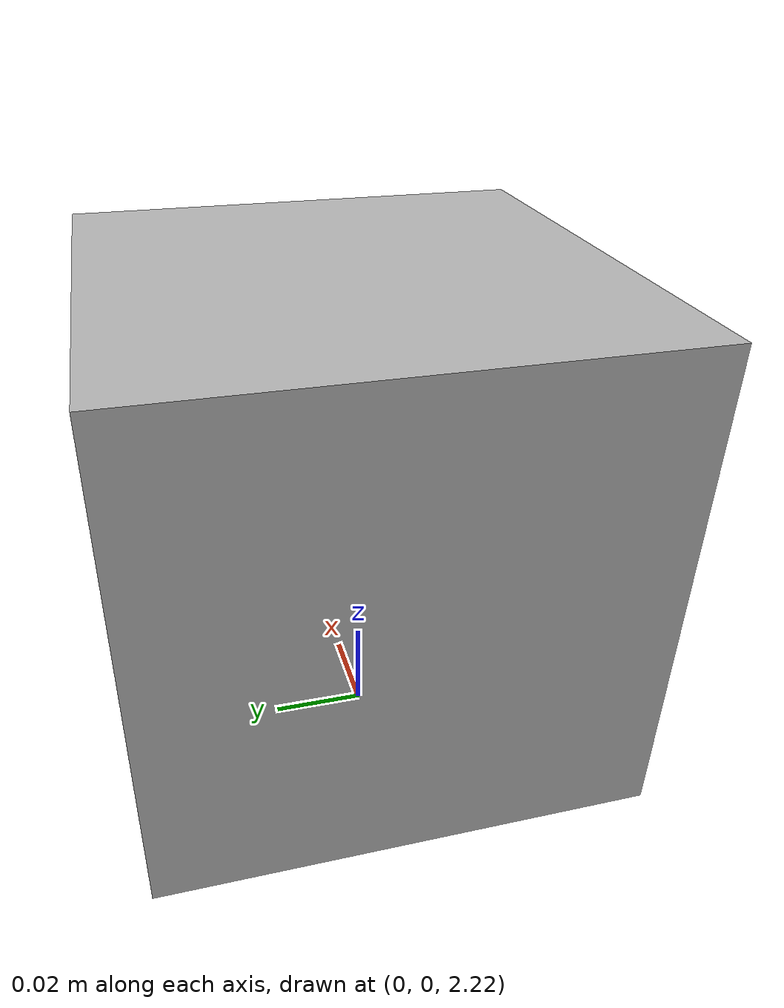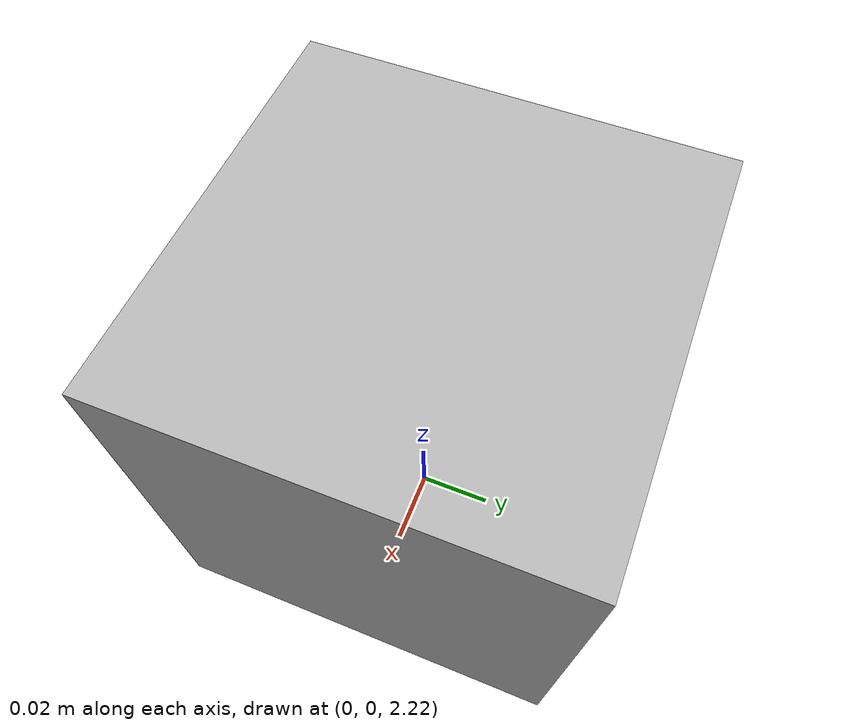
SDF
<?xml version="1.0"?>
<sdf version="1.5">
    <model name="distorted_camera">
        <static>true</static>
        <link name='usb_cam'>
            <pose>0 0.002195 2.276452 -0 1.552942 0</pose>
            <inertial>
                <mass>0.1</mass>
                <inertia>
                    <ixx>1</ixx>
                    <ixy>0</ixy>
                    <ixz>0</ixz>
                    <iyy>1</iyy>
                    <iyz>0</iyz>
                    <izz>1</izz>
                </inertia>
                <pose frame=''>0 0 0 0 -0 0</pose>
            </inertial>
            <collision name="collision">
                <geometry>
                    <box>
                        <size>0.1 0.1 0.1</size>
                    </box>
                </geometry>
            </collision>
            <visual name="visual">
                <geometry>
                    <box>
                        <size>0.1 0.1 0.1</size>
                    </box>
                </geometry>
            </visual>
            <self_collide>0</self_collide>
            <kinematic>0</kinematic>
            <sensor name='camera1' type='camera'>
                <camera name="head">
                    <horizontal_fov>1.3962634</horizontal_fov>
                    <image>
                        <width>800</width>
                        <height>800</height>
                        <format>R8G8B8</format>
                    </image>
                    <clip>
                        <near>0.02</near>
                        <far>300</far>
                    </clip>
                </camera>
                <always_on>1</always_on>
                <update_rate>30</update_rate>
                <visualize>1</visualize>
                <plugin name="camera_controller" filename="libgazebo_ros_camera.so">
                    <alwaysOn>true</alwaysOn>
                    <updateRate>0.0</updateRate>
                    <cameraName>camera</cameraName>
                    <imageTopicName>image_raw</imageTopicName>
                    <cameraInfoTopicName>camera_info</cameraInfoTopicName>
                    <frameName>usb_cam</frameName>
                    <hackBaseline>0.07</hackBaseline>
                    <distortionK1>0.0</distortionK1>
                    <distortionK2>0.0</distortionK2>
                    <distortionK3>0.0</distortionK3>
                    <distortionT1>0.0</distortionT1>
                    <distortionT2>0.0</distortionT2>
                </plugin>
            </sensor>
        </link>
    </model>
</sdf>
